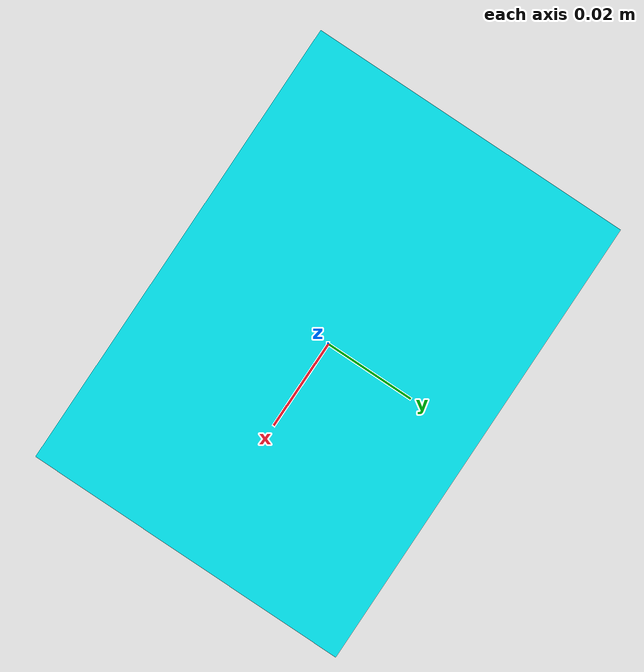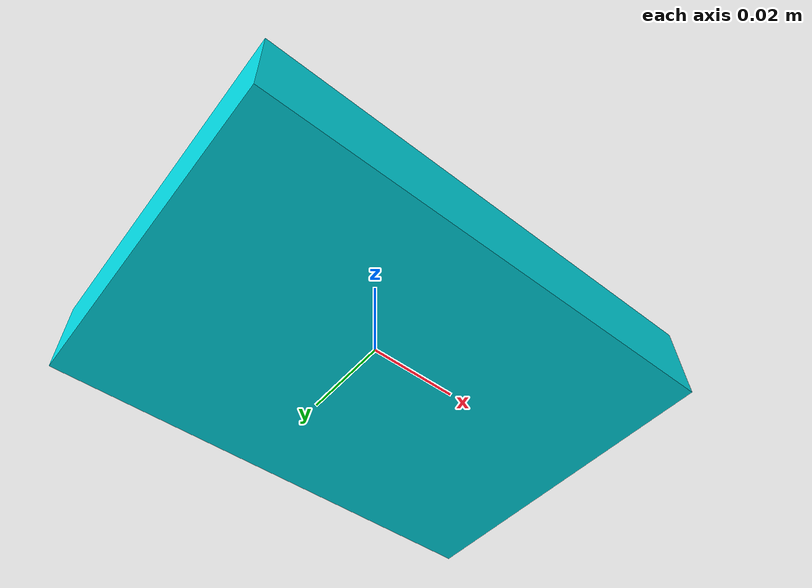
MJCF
<mujoco model="l3a3_support_pad">
  <!--
    L3-A3 pivot asset A: a broad, light, low-friction support pad.
    The cyan visual is an opaque, non-colliding duplicate of the exact box
    used for contact.  Half extents: 50 x 35 x 8 mm.
  -->
  <asset>
    <material name="l3a3_pad_cyan"
              rgba="0.00 0.88 0.92 1.00"
              specular="0.25"
              shininess="0.35"/>
  </asset>
  <worldbody>
    <body>
      <body name="object">
        <geom name="pad_collision"
              type="box" size="0.050 0.035 0.008"
              density="120"
              friction="0.15 0.02 0.001"
              group="0"
              rgba="0.00 0.88 0.92 1.00"
              solimp="0.998 0.998 0.001"
              solref="0.001 1"/>
        <geom name="pad_visual"
              type="box" size="0.0505 0.0355 0.0085"
              contype="0" conaffinity="0" group="1"
              material="l3a3_pad_cyan"/>
      </body>
      <site name="bottom_site" rgba="0 0 0 0" size="0.005"
            pos="0 0 -0.008"/>
      <site name="top_site" rgba="0 0 0 0" size="0.005"
            pos="0 0 0.008"/>
      <site name="horizontal_radius_site" rgba="0 0 0 0" size="0.005"
            pos="0.050 0.035 0"/>
    </body>
  </worldbody>
</mujoco>
